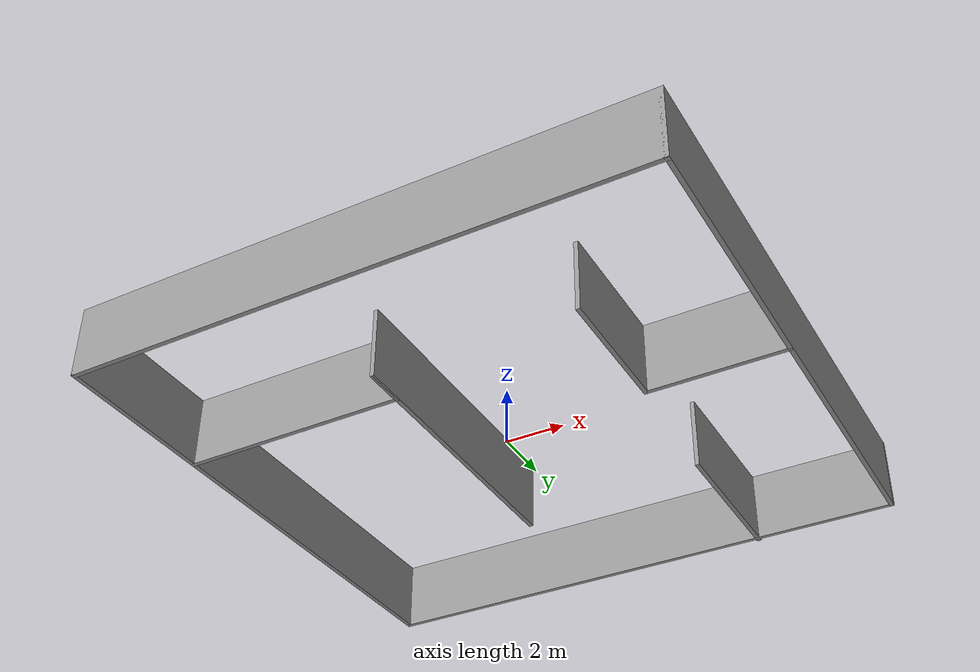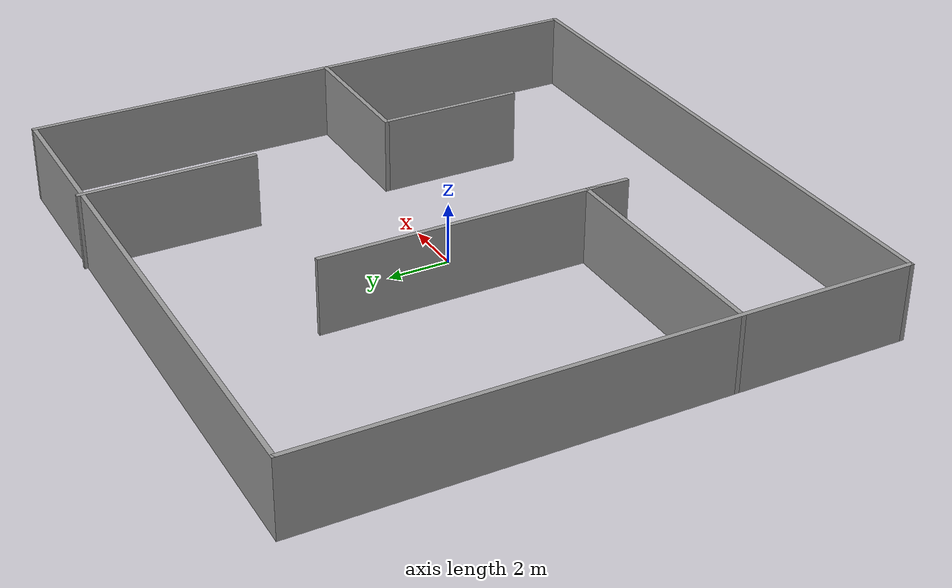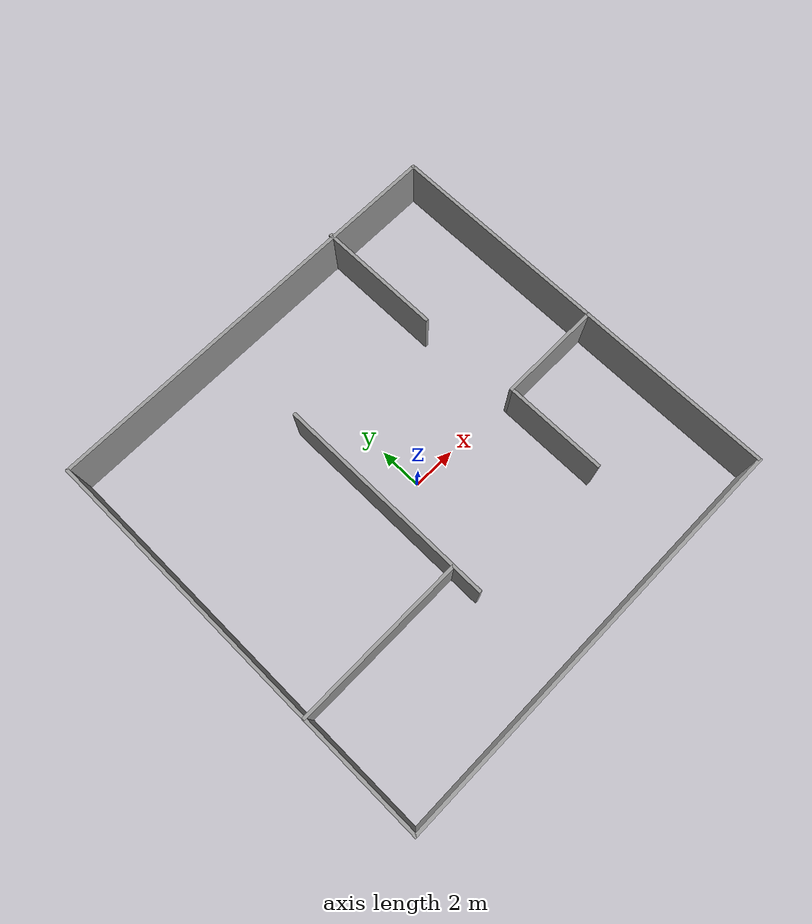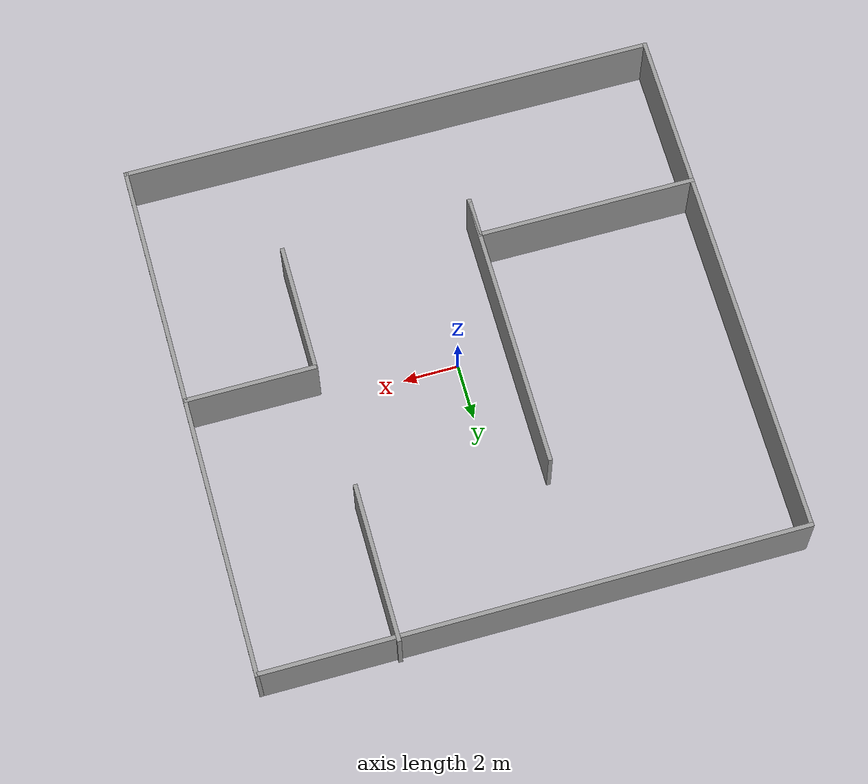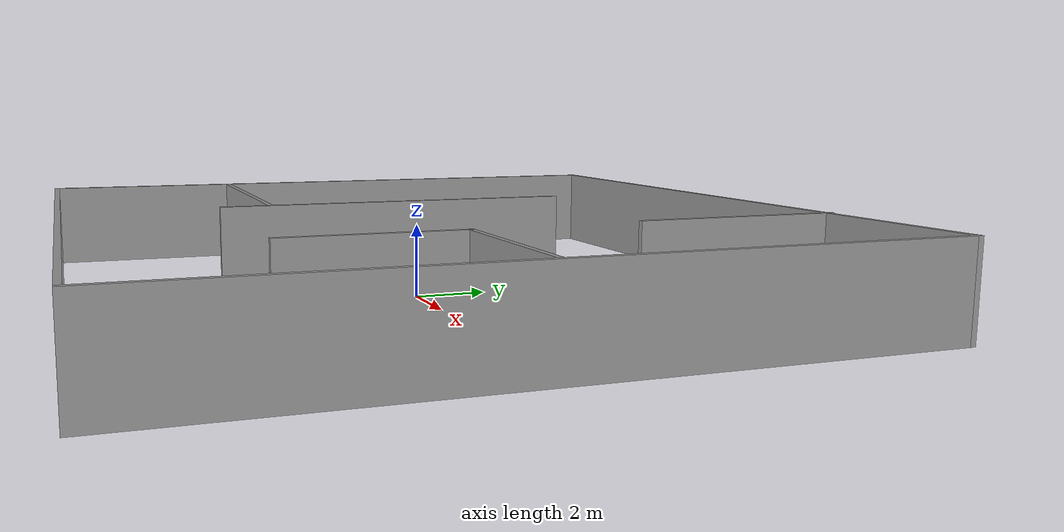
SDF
<?xml version='1.0'?>
<sdf version='1.7'>
  <model name='new_big_room'>
    <pose>-0.01151 0.23336 0 0 -0 0</pose>
    <link name='Wall_25'>
      <collision name='Wall_25_Collision'>
        <geometry>
          <box>
            <size>19.5 0.15 2.5</size>
          </box>
        </geometry>
        <pose>0 0 1.25 0 -0 0</pose>
      </collision>
      <visual name='Wall_25_Visual'>
        <pose>0 0 1.25 0 -0 0</pose>
        <geometry>
          <box>
            <size>19.5 0.15 2.5</size>
          </box>
        </geometry>
        <material>
          <script>
            <uri>file://media/materials/scripts/gazebo.material</uri>
            <name>Gazebo/Grey</name>
          </script>
          <ambient>1 1 1 1</ambient>
        </material>
        <meta>
          <layer>0</layer>
        </meta>
      </visual>
      <pose>0 -9.6037 0 0 -0 0</pose>
    </link>
    <link name='Wall_29'>
      <collision name='Wall_29_Collision'>
        <geometry>
          <box>
            <size>19.25 0.15 2.5</size>
          </box>
        </geometry>
        <pose>0 0 1.25 0 -0 0</pose>
      </collision>
      <visual name='Wall_29_Visual'>
        <pose>0 0 1.25 0 -0 0</pose>
        <geometry>
          <box>
            <size>19.25 0.15 2.5</size>
          </box>
        </geometry>
        <material>
          <script>
            <uri>file://media/materials/scripts/gazebo.material</uri>
            <name>Gazebo/Grey</name>
          </script>
          <ambient>1 1 1 1</ambient>
        </material>
        <meta>
          <layer>0</layer>
        </meta>
      </visual>
      <pose>9.675 -0.053699 0 0 -0 1.5708</pose>
    </link>
    <link name='Wall_30'>
      <collision name='Wall_30_Collision'>
        <geometry>
          <box>
            <size>19.5 0.15 2.5</size>
          </box>
        </geometry>
        <pose>0 0 1.25 0 -0 0</pose>
      </collision>
      <visual name='Wall_30_Visual'>
        <pose>0 0 1.25 0 -0 0</pose>
        <geometry>
          <box>
            <size>19.5 0.15 2.5</size>
          </box>
        </geometry>
        <material>
          <script>
            <uri>file://media/materials/scripts/gazebo.material</uri>
            <name>Gazebo/Grey</name>
          </script>
          <ambient>1 1 1 1</ambient>
        </material>
        <meta>
          <layer>0</layer>
        </meta>
      </visual>
      <pose>0 9.4963 0 0 -0 3.14159</pose>
    </link>
    <link name='Wall_32'>
      <collision name='Wall_32_Collision'>
        <geometry>
          <box>
            <size>19.25 0.15 2.5</size>
          </box>
        </geometry>
        <pose>0 0 1.25 0 -0 0</pose>
      </collision>
      <visual name='Wall_32_Visual'>
        <pose>0 0 1.25 0 -0 0</pose>
        <geometry>
          <box>
            <size>19.25 0.15 2.5</size>
          </box>
        </geometry>
        <material>
          <script>
            <uri>file://media/materials/scripts/gazebo.material</uri>
            <name>Gazebo/Grey</name>
          </script>
          <ambient>1 1 1 1</ambient>
        </material>
        <meta>
          <layer>0</layer>
        </meta>
      </visual>
      <pose>-9.675 -0.053699 0 0 -0 1.5708</pose>
    </link>
    <link name='Wall_34'>
      <collision name='Wall_34_Collision'>
        <geometry>
          <box>
            <size>8 0.15 2.5</size>
          </box>
        </geometry>
        <pose>0 0 1.25 0 -0 0</pose>
      </collision>
      <visual name='Wall_34_Visual'>
        <pose>0 0 1.25 0 -0 0</pose>
        <geometry>
          <box>
            <size>8 0.15 2.5</size>
          </box>
        </geometry>
        <material>
          <script>
            <uri>file://media/materials/scripts/gazebo.material</uri>
            <name>Gazebo/Grey</name>
          </script>
          <ambient>1 1 1 1</ambient>
        </material>
        <meta>
          <layer>0</layer>
        </meta>
      </visual>
      <pose>-5.75 -3.93243 0 0 -0 0</pose>
    </link>
    <link name='Wall_35'>
      <collision name='Wall_35_Collision'>
        <geometry>
          <box>
            <size>1.5 0.15 2.5</size>
          </box>
        </geometry>
        <pose>0 0 1.25 0 -0 0</pose>
      </collision>
      <visual name='Wall_35_Visual'>
        <pose>0 0 1.25 0 -0 0</pose>
        <geometry>
          <box>
            <size>1.5 0.15 2.5</size>
          </box>
        </geometry>
        <material>
          <script>
            <uri>file://media/materials/scripts/gazebo.material</uri>
            <name>Gazebo/Grey</name>
          </script>
          <ambient>1 1 1 1</ambient>
        </material>
        <meta>
          <layer>0</layer>
        </meta>
      </visual>
      <pose>-1.825 -4.60743 0 0 -0 -1.5708</pose>
    </link>
    <link name='Wall_36'>
      <collision name='Wall_36_Collision'>
        <geometry>
          <box>
            <size>10.25 0.15 2.5</size>
          </box>
        </geometry>
        <pose>0 0 1.25 0 -0 0</pose>
      </collision>
      <visual name='Wall_36_Visual'>
        <pose>0 0 1.25 0 -0 0</pose>
        <geometry>
          <box>
            <size>10.25 0.15 2.5</size>
          </box>
        </geometry>
        <material>
          <script>
            <uri>file://media/materials/scripts/gazebo.material</uri>
            <name>Gazebo/Grey</name>
          </script>
          <ambient>1 1 1 1</ambient>
        </material>
        <meta>
          <layer>0</layer>
        </meta>
      </visual>
      <pose>-1.825 -0.232434 0 0 -0 1.5708</pose>
    </link>
    <link name='Wall_38'>
      <collision name='Wall_38_Collision'>
        <geometry>
          <box>
            <size>5.75 0.15 2.5</size>
          </box>
        </geometry>
        <pose>0 0 1.25 0 -0 0</pose>
      </collision>
      <visual name='Wall_38_Visual'>
        <pose>0 0 1.25 0 -0 0</pose>
        <geometry>
          <box>
            <size>5.75 0.15 2.5</size>
          </box>
        </geometry>
        <material>
          <script>
            <uri>file://media/materials/scripts/gazebo.material</uri>
            <name>Gazebo/Grey</name>
          </script>
          <ambient>1 1 1 1</ambient>
        </material>
        <meta>
          <layer>0</layer>
        </meta>
      </visual>
      <pose>4.82418 6.8037 0 0 -0 -1.5708</pose>
    </link>
    <link name='Wall_40'>
      <collision name='Wall_40_Collision'>
        <geometry>
          <box>
            <size>4.75 0.15 2.5</size>
          </box>
        </geometry>
        <pose>0 0 1.25 0 -0 0</pose>
      </collision>
      <visual name='Wall_40_Visual'>
        <pose>0 0 1.25 0 -0 0</pose>
        <geometry>
          <box>
            <size>4.75 0.15 2.5</size>
          </box>
        </geometry>
        <material>
          <script>
            <uri>file://media/materials/scripts/gazebo.material</uri>
            <name>Gazebo/Grey</name>
          </script>
          <ambient>1 1 1 1</ambient>
        </material>
        <meta>
          <layer>0</layer>
        </meta>
      </visual>
      <pose>7.3394 -0.615279 0 0 -0 3.14159</pose>
    </link>
    <link name='Wall_41'>
      <collision name='Wall_41_Collision'>
        <geometry>
          <box>
            <size>4.75 0.15 2.5</size>
          </box>
        </geometry>
        <pose>0 0 1.25 0 -0 0</pose>
      </collision>
      <visual name='Wall_41_Visual'>
        <pose>0 0 1.25 0 -0 0</pose>
        <geometry>
          <box>
            <size>4.75 0.15 2.5</size>
          </box>
        </geometry>
        <material>
          <script>
            <uri>file://media/materials/scripts/gazebo.material</uri>
            <name>Gazebo/Grey</name>
          </script>
          <ambient>1 1 1 1</ambient>
        </material>
        <meta>
          <layer>0</layer>
        </meta>
      </visual>
      <pose>5.0394 -2.91528 0 0 -0 -1.5708</pose>
    </link>
    <static>1</static>
  </model>
</sdf>
